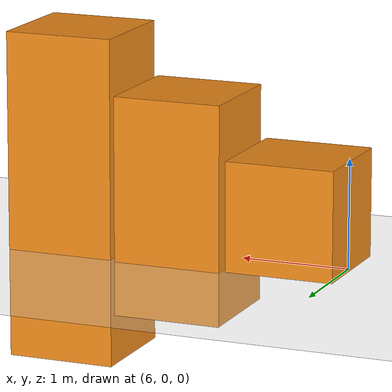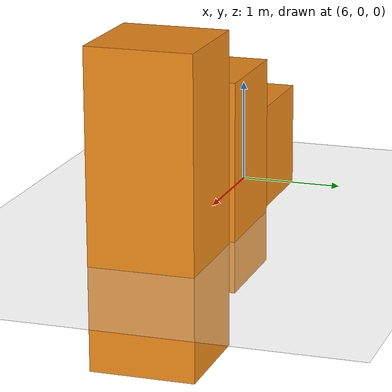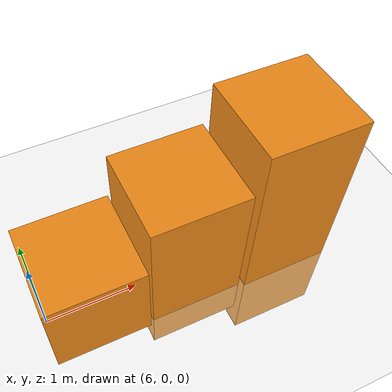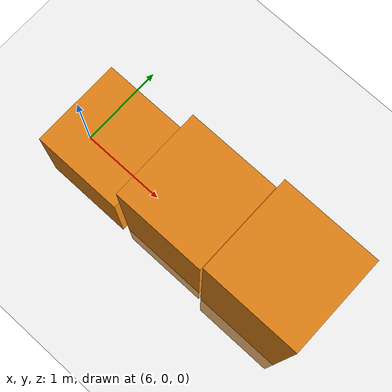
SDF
<sdf version="1.6">
 <world name="default">
  <light name="sun" type="directional">
   <pose>0 0 10 0 -0 0</pose>
   <diffuse>0.8 0.8 0.8 1</diffuse>
   <specular>0.1 0.1 0.1 1</specular>
   <attenuation>
    <range>1000</range>
    <constant>0.9</constant>
    <linear>0.01</linear>
    <quadratic>0.001</quadratic>
   </attenuation>
   <direction>-0.5 0.5 -1</direction>
  </light>
  <model name="ground_plane">
   <static>1</static>
   <link name="link">
    <collision name="collision">
     <geometry><plane><normal>0 0 1</normal><size>100 100</size></plane></geometry>
     <surface><friction><ode><mu>100</mu><mu2>50</mu2></ode></friction></surface>
    </collision>
    <visual name="visual">
     <cast_shadows>0</cast_shadows>
     <geometry><plane><normal>0 0 1</normal><size>100 100</size></plane></geometry>
     <material>
      <script><uri>file://media/materials/scripts/gazebo.material</uri><name>Gazebo/White</name></script>
     </material>
    </visual>
   </link>
  </model>
  <gravity>0 0 -9.8</gravity>
  <magnetic_field>6e-06 2.3e-05 -4.2e-05</magnetic_field>
  <atmosphere type="adiabatic"/>
  <physics name="default_physics" default="0" type="ode">
   <max_step_size>0.001</max_step_size>
   <real_time_factor>1</real_time_factor>
   <real_time_update_rate>1000</real_time_update_rate>
  </physics>
  <scene><ambient>0.4 0.4 0.4 1</ambient><background>0.7 0.7 0.7 1</background><shadows>1</shadows></scene>
  <spherical_coordinates>
   <surface_model>EARTH_WGS84</surface_model>
   <latitude_deg>0</latitude_deg>
   <longitude_deg>0</longitude_deg>
   <elevation>0</elevation>
   <heading_deg>0</heading_deg>
  </spherical_coordinates>
  <model name="unit_box_0">
   <pose>6.46975 0.005217 0.499995 0 -1e-05 -7e-05</pose>
   <link name="link">
    <inertial>
     <mass>1</mass>
     <inertia>
      <ixx>0.166667</ixx>
      <ixy>0</ixy>
      <ixz>0</ixz>
      <iyy>0.166667</iyy>
      <iyz>0</iyz>
      <izz>0.166667</izz>
     </inertia>
    </inertial>
    <collision name="collision"><geometry><box><size>1 1 1</size></box></geometry></collision>
    <visual name="visual">
     <geometry><box><size>1 1 1</size></box></geometry>
     <material>
      <script><name>Gazebo/Orange</name><uri>file://media/materials/scripts/gazebo.material</uri></script>
     </material>
    </visual>
   </link>
  </model>
  <model name="unit_box_0_clone">
   <pose>7.51364 0.047288 0.499995 1e-05 -0 8e-06</pose>
   <link name="link">
    <inertial>
     <mass>1</mass>
     <inertia>
      <ixx>0.166667</ixx>
      <ixy>0</ixy>
      <ixz>0</ixz>
      <iyy>0.166667</iyy>
      <iyz>0</iyz>
      <izz>0.166667</izz>
     </inertia>
    </inertial>
    <collision name="collision"><geometry><box><size>1 1 2</size></box></geometry></collision>
    <visual name="visual">
     <geometry><box><size>1 1 2</size></box></geometry>
     <material>
      <script><name>Gazebo/Orange</name><uri>file://media/materials/scripts/gazebo.material</uri></script>
     </material>
    </visual>
   </link>
  </model>
  <model name="unit_box_0_clone_0">
   <pose>8.56994 0.011638 0.499995 0 1e-05 1.2e-05</pose>
   <link name="link">
    <inertial>
     <mass>1</mass>
     <inertia>
      <ixx>0.166667</ixx>
      <ixy>0</ixy>
      <ixz>0</ixz>
      <iyy>0.166667</iyy>
      <iyz>0</iyz>
      <izz>0.166667</izz>
     </inertia>
    </inertial>
    <collision name="collision"><geometry><box><size>1 1 3</size></box></geometry></collision>
    <visual name="visual">
     <geometry><box><size>1 1 3</size></box></geometry>
     <material>
      <script><name>Gazebo/Orange</name><uri>file://media/materials/scripts/gazebo.material</uri></script>
     </material>
    </visual>
   </link>
  </model>
 </world>
</sdf>
